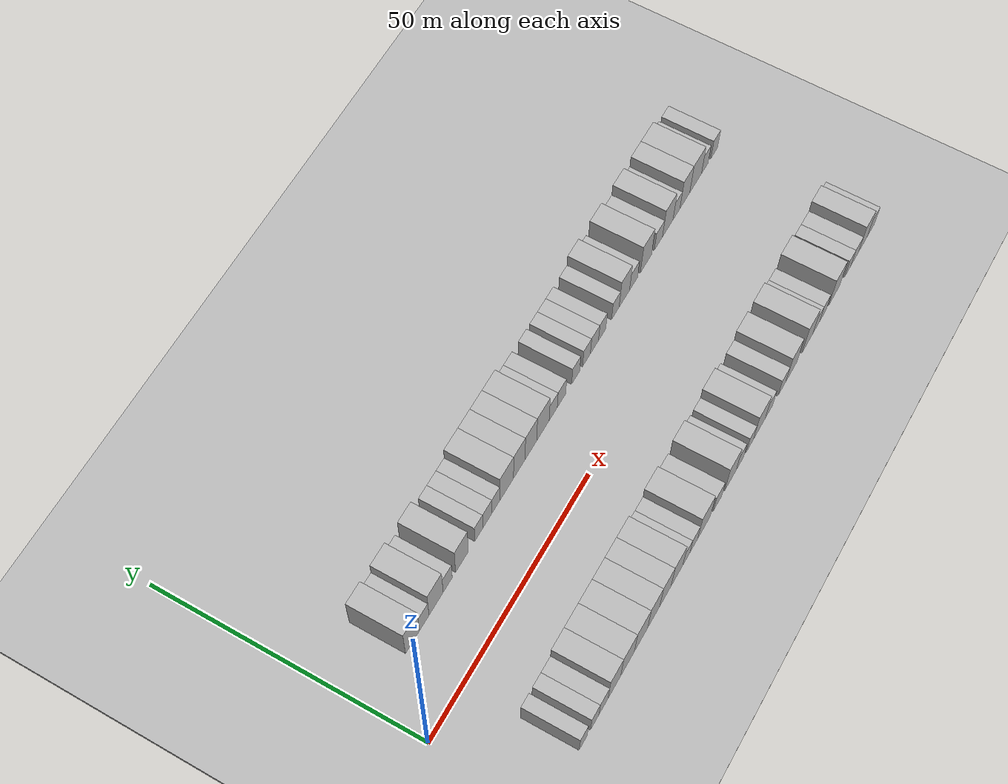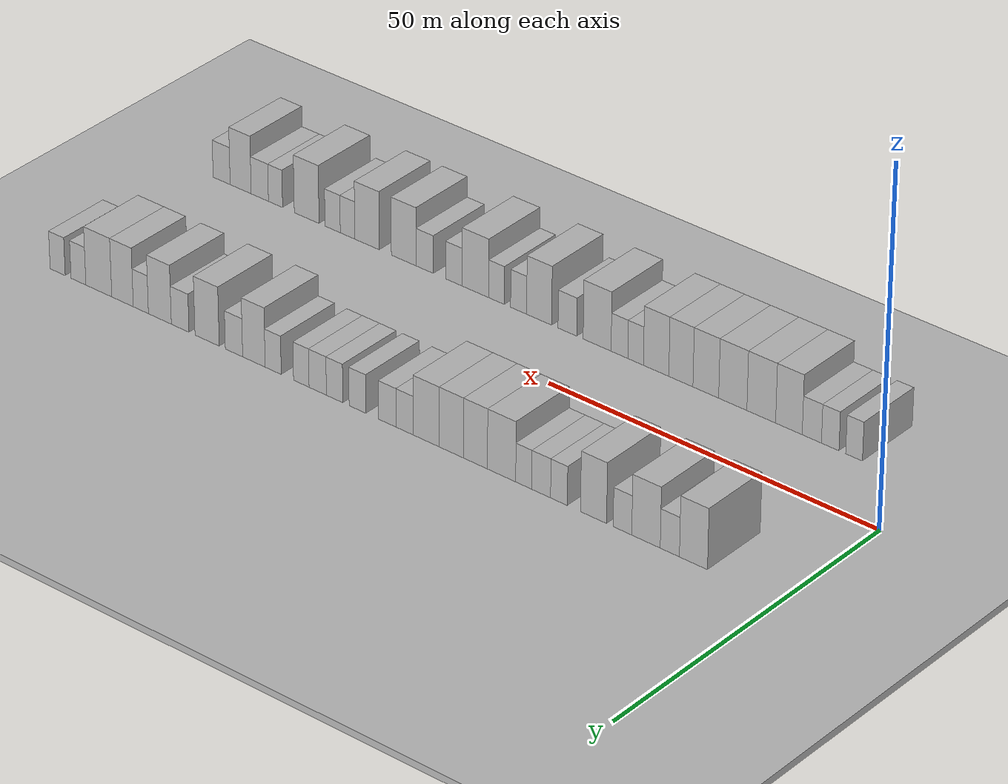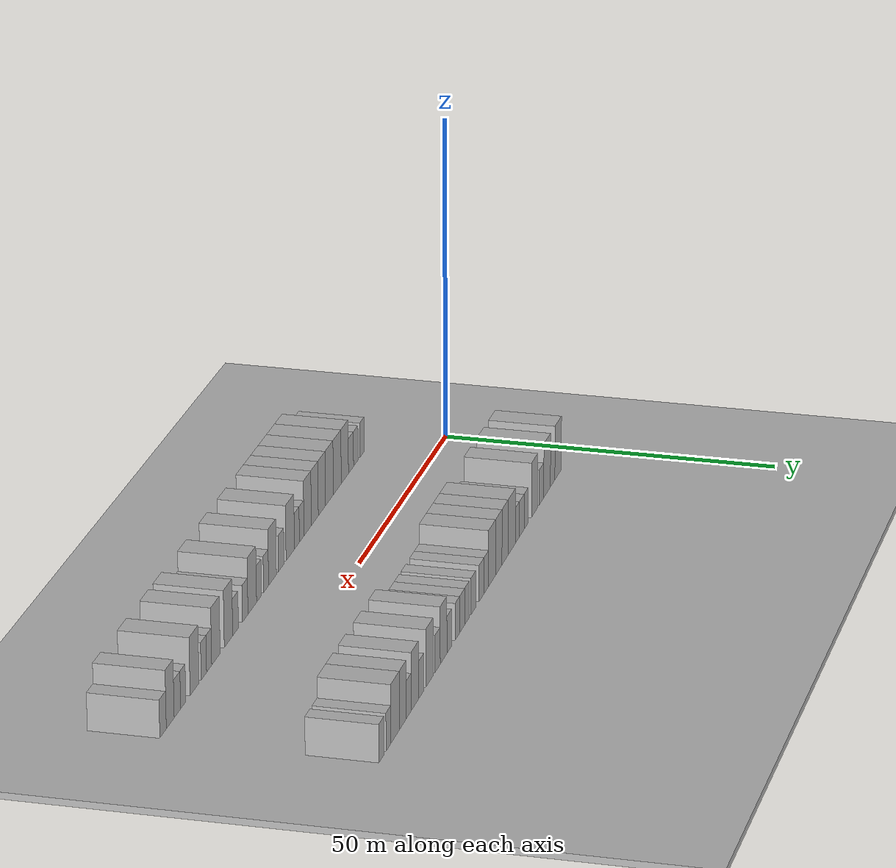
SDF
<sdf version="1.6">
 <world name="default">
  <include><name>ground_plane_1</name><uri>model://HANNAS_ground_plane</uri></include>
  <include>
   <name>ground_plane_2</name>
   <uri>model://HANNAS_ground_plane</uri>
   <pose>100 0 0  0 0 0</pose>
  </include>
  <model name="building_1">
   <static>1</static>
   <pose>12.0689 15.0000 0 0.000000 0.000000 1.570796</pose>
   <link name="link">
    <pose>0 0 4.50 0 0 0</pose>
    <collision name="collision"><geometry><box><size>10.0000 4.1378 9.0000</size></box></geometry></collision>
    <visual name="visual">
     <cast_shadows>0</cast_shadows>
     <geometry><box><size>10.0000 4.1378 9.0000</size></box></geometry>
     <material>
      <script>
       <uri>model://HANNAS_wall/materials/scripts</uri>
       <uri>model://HANNAS_wall/materials/textures</uri>
       <name>vrc/HANNAS_wall</name>
      </script>
     </material>
    </visual>
   </link>
  </model>
  <model name="building_2">
   <static>1</static>
   <pose>15.5600 15.0000 0 0.000000 0.000000 1.570796</pose>
   <link name="link">
    <pose>0 0 3.00 0 0 0</pose>
    <collision name="collision"><geometry><box><size>10.0000 2.8444 6.0000</size></box></geometry></collision>
    <visual name="visual">
     <cast_shadows>0</cast_shadows>
     <geometry><box><size>10.0000 2.8444 6.0000</size></box></geometry>
     <material>
      <script>
       <uri>model://HANNAS_wall/materials/scripts</uri>
       <uri>model://HANNAS_wall/materials/textures</uri>
       <name>vrc/HANNAS_wall</name>
      </script>
     </material>
    </visual>
   </link>
  </model>
  <model name="building_3">
   <static>1</static>
   <pose>19.1028 15.0000 0 0.000000 0.000000 1.570796</pose>
   <link name="link">
    <pose>0 0 4.50 0 0 0</pose>
    <collision name="collision"><geometry><box><size>10.0000 4.2411 9.0000</size></box></geometry></collision>
    <visual name="visual">
     <cast_shadows>0</cast_shadows>
     <geometry><box><size>10.0000 4.2411 9.0000</size></box></geometry>
     <material>
      <script>
       <uri>model://HANNAS_wall/materials/scripts</uri>
       <uri>model://HANNAS_wall/materials/textures</uri>
       <name>vrc/HANNAS_wall</name>
      </script>
     </material>
    </visual>
   </link>
  </model>
  <model name="building_4">
   <static>1</static>
   <pose>22.6102 15.0000 0 0.000000 0.000000 1.570796</pose>
   <link name="link">
    <pose>0 0 3.00 0 0 0</pose>
    <collision name="collision"><geometry><box><size>10.0000 2.7738 6.0000</size></box></geometry></collision>
    <visual name="visual">
     <cast_shadows>0</cast_shadows>
     <geometry><box><size>10.0000 2.7738 6.0000</size></box></geometry>
     <material>
      <script>
       <uri>model://HANNAS_wall/materials/scripts</uri>
       <uri>model://HANNAS_wall/materials/textures</uri>
       <name>vrc/HANNAS_wall</name>
      </script>
     </material>
    </visual>
   </link>
  </model>
  <model name="building_5">
   <static>1</static>
   <pose>26.9591 15.0000 0 0.000000 0.000000 1.570796</pose>
   <link name="link">
    <pose>0 0 4.50 0 0 0</pose>
    <collision name="collision"><geometry><box><size>10.0000 3.9240 9.0000</size></box></geometry></collision>
    <visual name="visual">
     <cast_shadows>0</cast_shadows>
     <geometry><box><size>10.0000 3.9240 9.0000</size></box></geometry>
     <material>
      <script>
       <uri>model://HANNAS_wall/materials/scripts</uri>
       <uri>model://HANNAS_wall/materials/textures</uri>
       <name>vrc/HANNAS_wall</name>
      </script>
     </material>
    </visual>
   </link>
  </model>
  <model name="building_6">
   <static>1</static>
   <pose>32.1991 15.0000 0 0.000000 0.000000 1.570796</pose>
   <link name="link">
    <pose>0 0 3.00 0 0 0</pose>
    <collision name="collision"><geometry><box><size>10.0000 2.5560 6.0000</size></box></geometry></collision>
    <visual name="visual">
     <cast_shadows>0</cast_shadows>
     <geometry><box><size>10.0000 2.5560 6.0000</size></box></geometry>
     <material>
      <script>
       <uri>model://HANNAS_wall/materials/scripts</uri>
       <uri>model://HANNAS_wall/materials/textures</uri>
       <name>vrc/HANNAS_wall</name>
      </script>
     </material>
    </visual>
   </link>
  </model>
  <model name="building_7">
   <static>1</static>
   <pose>34.9066 15.0000 0 0.000000 0.000000 1.570796</pose>
   <link name="link">
    <pose>0 0 3.00 0 0 0</pose>
    <collision name="collision"><geometry><box><size>10.0000 2.8590 6.0000</size></box></geometry></collision>
    <visual name="visual">
     <cast_shadows>0</cast_shadows>
     <geometry><box><size>10.0000 2.8590 6.0000</size></box></geometry>
     <material>
      <script>
       <uri>model://HANNAS_wall/materials/scripts</uri>
       <uri>model://HANNAS_wall/materials/textures</uri>
       <name>vrc/HANNAS_wall</name>
      </script>
     </material>
    </visual>
   </link>
  </model>
  <model name="building_8">
   <static>1</static>
   <pose>37.5727 15.0000 0 0.000000 0.000000 1.570796</pose>
   <link name="link">
    <pose>0 0 3.00 0 0 0</pose>
    <collision name="collision"><geometry><box><size>10.0000 2.4732 6.0000</size></box></geometry></collision>
    <visual name="visual">
     <cast_shadows>0</cast_shadows>
     <geometry><box><size>10.0000 2.4732 6.0000</size></box></geometry>
     <material>
      <script>
       <uri>model://HANNAS_wall/materials/scripts</uri>
       <uri>model://HANNAS_wall/materials/textures</uri>
       <name>vrc/HANNAS_wall</name>
      </script>
     </material>
    </visual>
   </link>
  </model>
  <model name="building_9">
   <static>1</static>
   <pose>40.9801 15.0000 0 0.000000 0.000000 1.570796</pose>
   <link name="link">
    <pose>0 0 4.50 0 0 0</pose>
    <collision name="collision"><geometry><box><size>10.0000 4.3416 9.0000</size></box></geometry></collision>
    <visual name="visual">
     <cast_shadows>0</cast_shadows>
     <geometry><box><size>10.0000 4.3416 9.0000</size></box></geometry>
     <material>
      <script>
       <uri>model://HANNAS_wall/materials/scripts</uri>
       <uri>model://HANNAS_wall/materials/textures</uri>
       <name>vrc/HANNAS_wall</name>
      </script>
     </material>
    </visual>
   </link>
  </model>
  <model name="building_10">
   <static>1</static>
   <pose>45.0064 15.0000 0 0.000000 0.000000 1.570796</pose>
   <link name="link">
    <pose>0 0 4.50 0 0 0</pose>
    <collision name="collision"><geometry><box><size>10.0000 3.7110 9.0000</size></box></geometry></collision>
    <visual name="visual">
     <cast_shadows>0</cast_shadows>
     <geometry><box><size>10.0000 3.7110 9.0000</size></box></geometry>
     <material>
      <script>
       <uri>model://HANNAS_wall/materials/scripts</uri>
       <uri>model://HANNAS_wall/materials/textures</uri>
       <name>vrc/HANNAS_wall</name>
      </script>
     </material>
    </visual>
   </link>
  </model>
  <model name="building_11">
   <static>1</static>
   <pose>48.7529 15.0000 0 0.000000 0.000000 1.570796</pose>
   <link name="link">
    <pose>0 0 4.50 0 0 0</pose>
    <collision name="collision"><geometry><box><size>10.0000 3.7821 9.0000</size></box></geometry></collision>
    <visual name="visual">
     <cast_shadows>0</cast_shadows>
     <geometry><box><size>10.0000 3.7821 9.0000</size></box></geometry>
     <material>
      <script>
       <uri>model://HANNAS_wall/materials/scripts</uri>
       <uri>model://HANNAS_wall/materials/textures</uri>
       <name>vrc/HANNAS_wall</name>
      </script>
     </material>
    </visual>
   </link>
  </model>
  <model name="building_12">
   <static>1</static>
   <pose>52.6965 15.0000 0 0.000000 0.000000 1.570796</pose>
   <link name="link">
    <pose>0 0 4.50 0 0 0</pose>
    <collision name="collision"><geometry><box><size>10.0000 4.1051 9.0000</size></box></geometry></collision>
    <visual name="visual">
     <cast_shadows>0</cast_shadows>
     <geometry><box><size>10.0000 4.1051 9.0000</size></box></geometry>
     <material>
      <script>
       <uri>model://HANNAS_wall/materials/scripts</uri>
       <uri>model://HANNAS_wall/materials/textures</uri>
       <name>vrc/HANNAS_wall</name>
      </script>
     </material>
    </visual>
   </link>
  </model>
  <model name="building_13">
   <static>1</static>
   <pose>56.1009 15.0000 0 0.000000 0.000000 1.570796</pose>
   <link name="link">
    <pose>0 0 3.00 0 0 0</pose>
    <collision name="collision"><geometry><box><size>10.0000 2.7037 6.0000</size></box></geometry></collision>
    <visual name="visual">
     <cast_shadows>0</cast_shadows>
     <geometry><box><size>10.0000 2.7037 6.0000</size></box></geometry>
     <material>
      <script>
       <uri>model://HANNAS_wall/materials/scripts</uri>
       <uri>model://HANNAS_wall/materials/textures</uri>
       <name>vrc/HANNAS_wall</name>
      </script>
     </material>
    </visual>
   </link>
  </model>
  <model name="building_14">
   <static>1</static>
   <pose>58.8511 15.0000 0 0.000000 0.000000 1.570796</pose>
   <link name="link">
    <pose>0 0 3.00 0 0 0</pose>
    <collision name="collision"><geometry><box><size>10.0000 2.7967 6.0000</size></box></geometry></collision>
    <visual name="visual">
     <cast_shadows>0</cast_shadows>
     <geometry><box><size>10.0000 2.7967 6.0000</size></box></geometry>
     <material>
      <script>
       <uri>model://HANNAS_wall/materials/scripts</uri>
       <uri>model://HANNAS_wall/materials/textures</uri>
       <name>vrc/HANNAS_wall</name>
      </script>
     </material>
    </visual>
   </link>
  </model>
  <model name="building_15">
   <static>1</static>
   <pose>63.5975 15.0000 0 0.000000 0.000000 1.570796</pose>
   <link name="link">
    <pose>0 0 3.00 0 0 0</pose>
    <collision name="collision"><geometry><box><size>10.0000 2.6962 6.0000</size></box></geometry></collision>
    <visual name="visual">
     <cast_shadows>0</cast_shadows>
     <geometry><box><size>10.0000 2.6962 6.0000</size></box></geometry>
     <material>
      <script>
       <uri>model://HANNAS_wall/materials/scripts</uri>
       <uri>model://HANNAS_wall/materials/textures</uri>
       <name>vrc/HANNAS_wall</name>
      </script>
     </material>
    </visual>
   </link>
  </model>
  <model name="building_16">
   <static>1</static>
   <pose>67.2687 15.0000 0 0.000000 0.000000 1.570796</pose>
   <link name="link">
    <pose>0 0 3.00 0 0 0</pose>
    <collision name="collision"><geometry><box><size>10.0000 2.6462 6.0000</size></box></geometry></collision>
    <visual name="visual">
     <cast_shadows>0</cast_shadows>
     <geometry><box><size>10.0000 2.6462 6.0000</size></box></geometry>
     <material>
      <script>
       <uri>model://HANNAS_wall/materials/scripts</uri>
       <uri>model://HANNAS_wall/materials/textures</uri>
       <name>vrc/HANNAS_wall</name>
      </script>
     </material>
    </visual>
   </link>
  </model>
  <model name="building_17">
   <static>1</static>
   <pose>69.9906 15.0000 0 0.000000 0.000000 1.570796</pose>
   <link name="link">
    <pose>0 0 3.00 0 0 0</pose>
    <collision name="collision"><geometry><box><size>10.0000 2.7976 6.0000</size></box></geometry></collision>
    <visual name="visual">
     <cast_shadows>0</cast_shadows>
     <geometry><box><size>10.0000 2.7976 6.0000</size></box></geometry>
     <material>
      <script>
       <uri>model://HANNAS_wall/materials/scripts</uri>
       <uri>model://HANNAS_wall/materials/textures</uri>
       <name>vrc/HANNAS_wall</name>
      </script>
     </material>
    </visual>
   </link>
  </model>
  <model name="building_18">
   <static>1</static>
   <pose>72.6465 15.0000 0 0.000000 0.000000 1.570796</pose>
   <link name="link">
    <pose>0 0 3.00 0 0 0</pose>
    <collision name="collision"><geometry><box><size>10.0000 2.5141 6.0000</size></box></geometry></collision>
    <visual name="visual">
     <cast_shadows>0</cast_shadows>
     <geometry><box><size>10.0000 2.5141 6.0000</size></box></geometry>
     <material>
      <script>
       <uri>model://HANNAS_wall/materials/scripts</uri>
       <uri>model://HANNAS_wall/materials/textures</uri>
       <name>vrc/HANNAS_wall</name>
      </script>
     </material>
    </visual>
   </link>
  </model>
  <model name="building_19">
   <static>1</static>
   <pose>77.2143 15.0000 0 0.000000 0.000000 1.570796</pose>
   <link name="link">
    <pose>0 0 3.00 0 0 0</pose>
    <collision name="collision"><geometry><box><size>10.0000 2.6215 6.0000</size></box></geometry></collision>
    <visual name="visual">
     <cast_shadows>0</cast_shadows>
     <geometry><box><size>10.0000 2.6215 6.0000</size></box></geometry>
     <material>
      <script>
       <uri>model://HANNAS_wall/materials/scripts</uri>
       <uri>model://HANNAS_wall/materials/textures</uri>
       <name>vrc/HANNAS_wall</name>
      </script>
     </material>
    </visual>
   </link>
  </model>
  <model name="building_20">
   <static>1</static>
   <pose>80.3716 15.0000 0 0.000000 0.000000 1.570796</pose>
   <link name="link">
    <pose>0 0 4.50 0 0 0</pose>
    <collision name="collision"><geometry><box><size>10.0000 3.6931 9.0000</size></box></geometry></collision>
    <visual name="visual">
     <cast_shadows>0</cast_shadows>
     <geometry><box><size>10.0000 3.6931 9.0000</size></box></geometry>
     <material>
      <script>
       <uri>model://HANNAS_wall/materials/scripts</uri>
       <uri>model://HANNAS_wall/materials/textures</uri>
       <name>vrc/HANNAS_wall</name>
      </script>
     </material>
    </visual>
   </link>
  </model>
  <model name="building_21">
   <static>1</static>
   <pose>83.6435 15.0000 0 0.000000 0.000000 1.570796</pose>
   <link name="link">
    <pose>0 0 3.00 0 0 0</pose>
    <collision name="collision"><geometry><box><size>10.0000 2.8508 6.0000</size></box></geometry></collision>
    <visual name="visual">
     <cast_shadows>0</cast_shadows>
     <geometry><box><size>10.0000 2.8508 6.0000</size></box></geometry>
     <material>
      <script>
       <uri>model://HANNAS_wall/materials/scripts</uri>
       <uri>model://HANNAS_wall/materials/textures</uri>
       <name>vrc/HANNAS_wall</name>
      </script>
     </material>
    </visual>
   </link>
  </model>
  <model name="building_22">
   <static>1</static>
   <pose>88.0802 15.0000 0 0.000000 0.000000 1.570796</pose>
   <link name="link">
    <pose>0 0 4.50 0 0 0</pose>
    <collision name="collision"><geometry><box><size>10.0000 4.0225 9.0000</size></box></geometry></collision>
    <visual name="visual">
     <cast_shadows>0</cast_shadows>
     <geometry><box><size>10.0000 4.0225 9.0000</size></box></geometry>
     <material>
      <script>
       <uri>model://HANNAS_wall/materials/scripts</uri>
       <uri>model://HANNAS_wall/materials/textures</uri>
       <name>vrc/HANNAS_wall</name>
      </script>
     </material>
    </visual>
   </link>
  </model>
  <model name="building_23">
   <static>1</static>
   <pose>92.5674 15.0000 0 0.000000 0.000000 1.570796</pose>
   <link name="link">
    <pose>0 0 3.00 0 0 0</pose>
    <collision name="collision"><geometry><box><size>10.0000 2.9518 6.0000</size></box></geometry></collision>
    <visual name="visual">
     <cast_shadows>0</cast_shadows>
     <geometry><box><size>10.0000 2.9518 6.0000</size></box></geometry>
     <material>
      <script>
       <uri>model://HANNAS_wall/materials/scripts</uri>
       <uri>model://HANNAS_wall/materials/textures</uri>
       <name>vrc/HANNAS_wall</name>
      </script>
     </material>
    </visual>
   </link>
  </model>
  <model name="building_24">
   <static>1</static>
   <pose>95.9662 15.0000 0 0.000000 0.000000 1.570796</pose>
   <link name="link">
    <pose>0 0 4.50 0 0 0</pose>
    <collision name="collision"><geometry><box><size>10.0000 3.8458 9.0000</size></box></geometry></collision>
    <visual name="visual">
     <cast_shadows>0</cast_shadows>
     <geometry><box><size>10.0000 3.8458 9.0000</size></box></geometry>
     <material>
      <script>
       <uri>model://HANNAS_wall/materials/scripts</uri>
       <uri>model://HANNAS_wall/materials/textures</uri>
       <name>vrc/HANNAS_wall</name>
      </script>
     </material>
    </visual>
   </link>
  </model>
  <model name="building_25">
   <static>1</static>
   <pose>99.1635 15.0000 0 0.000000 0.000000 1.570796</pose>
   <link name="link">
    <pose>0 0 3.00 0 0 0</pose>
    <collision name="collision"><geometry><box><size>10.0000 2.5488 6.0000</size></box></geometry></collision>
    <visual name="visual">
     <cast_shadows>0</cast_shadows>
     <geometry><box><size>10.0000 2.5488 6.0000</size></box></geometry>
     <material>
      <script>
       <uri>model://HANNAS_wall/materials/scripts</uri>
       <uri>model://HANNAS_wall/materials/textures</uri>
       <name>vrc/HANNAS_wall</name>
      </script>
     </material>
    </visual>
   </link>
  </model>
  <model name="building_26">
   <static>1</static>
   <pose>102.2581 15.0000 0 0.000000 0.000000 1.570796</pose>
   <link name="link">
    <pose>0 0 4.50 0 0 0</pose>
    <collision name="collision"><geometry><box><size>10.0000 3.6404 9.0000</size></box></geometry></collision>
    <visual name="visual">
     <cast_shadows>0</cast_shadows>
     <geometry><box><size>10.0000 3.6404 9.0000</size></box></geometry>
     <material>
      <script>
       <uri>model://HANNAS_wall/materials/scripts</uri>
       <uri>model://HANNAS_wall/materials/textures</uri>
       <name>vrc/HANNAS_wall</name>
      </script>
     </material>
    </visual>
   </link>
  </model>
  <model name="building_27">
   <static>1</static>
   <pose>106.2851 15.0000 0 0.000000 0.000000 1.570796</pose>
   <link name="link">
    <pose>0 0 4.50 0 0 0</pose>
    <collision name="collision"><geometry><box><size>10.0000 4.4137 9.0000</size></box></geometry></collision>
    <visual name="visual">
     <cast_shadows>0</cast_shadows>
     <geometry><box><size>10.0000 4.4137 9.0000</size></box></geometry>
     <material>
      <script>
       <uri>model://HANNAS_wall/materials/scripts</uri>
       <uri>model://HANNAS_wall/materials/textures</uri>
       <name>vrc/HANNAS_wall</name>
      </script>
     </material>
    </visual>
   </link>
  </model>
  <model name="building_28">
   <static>1</static>
   <pose>109.7603 15.0000 0 0.000000 0.000000 1.570796</pose>
   <link name="link">
    <pose>0 0 3.00 0 0 0</pose>
    <collision name="collision"><geometry><box><size>10.0000 2.5368 6.0000</size></box></geometry></collision>
    <visual name="visual">
     <cast_shadows>0</cast_shadows>
     <geometry><box><size>10.0000 2.5368 6.0000</size></box></geometry>
     <material>
      <script>
       <uri>model://HANNAS_wall/materials/scripts</uri>
       <uri>model://HANNAS_wall/materials/textures</uri>
       <name>vrc/HANNAS_wall</name>
      </script>
     </material>
    </visual>
   </link>
  </model>
  <model name="building_29">
   <static>1</static>
   <pose>113.3267 15.0000 0 0.000000 0.000000 1.570796</pose>
   <link name="link">
    <pose>0 0 3.00 0 0 0</pose>
    <collision name="collision"><geometry><box><size>10.0000 2.5958 6.0000</size></box></geometry></collision>
    <visual name="visual">
     <cast_shadows>0</cast_shadows>
     <geometry><box><size>10.0000 2.5958 6.0000</size></box></geometry>
     <material>
      <script>
       <uri>model://HANNAS_wall/materials/scripts</uri>
       <uri>model://HANNAS_wall/materials/textures</uri>
       <name>vrc/HANNAS_wall</name>
      </script>
     </material>
    </visual>
   </link>
  </model>
  <model name="building_58">
   <static>1</static>
   <pose>11.2456 -15.0000 0 0.000000 0.000000 1.570796</pose>
   <link name="link">
    <pose>0 0 3.00 0 0 0</pose>
    <collision name="collision"><geometry><box><size>10.0000 2.4913 6.0000</size></box></geometry></collision>
    <visual name="visual">
     <cast_shadows>0</cast_shadows>
     <geometry><box><size>10.0000 2.4913 6.0000</size></box></geometry>
     <material>
      <script>
       <uri>model://HANNAS_wall/materials/scripts</uri>
       <uri>model://HANNAS_wall/materials/textures</uri>
       <name>vrc/HANNAS_wall</name>
      </script>
     </material>
    </visual>
   </link>
  </model>
  <model name="building_59">
   <static>1</static>
   <pose>14.8030 -15.0000 0 0.000000 0.000000 1.570796</pose>
   <link name="link">
    <pose>0 0 3.00 0 0 0</pose>
    <collision name="collision"><geometry><box><size>10.0000 2.6236 6.0000</size></box></geometry></collision>
    <visual name="visual">
     <cast_shadows>0</cast_shadows>
     <geometry><box><size>10.0000 2.6236 6.0000</size></box></geometry>
     <material>
      <script>
       <uri>model://HANNAS_wall/materials/scripts</uri>
       <uri>model://HANNAS_wall/materials/textures</uri>
       <name>vrc/HANNAS_wall</name>
      </script>
     </material>
    </visual>
   </link>
  </model>
  <model name="building_60">
   <static>1</static>
   <pose>17.5564 -15.0000 0 0.000000 0.000000 1.570796</pose>
   <link name="link">
    <pose>0 0 3.00 0 0 0</pose>
    <collision name="collision"><geometry><box><size>10.0000 2.8832 6.0000</size></box></geometry></collision>
    <visual name="visual">
     <cast_shadows>0</cast_shadows>
     <geometry><box><size>10.0000 2.8832 6.0000</size></box></geometry>
     <material>
      <script>
       <uri>model://HANNAS_wall/materials/scripts</uri>
       <uri>model://HANNAS_wall/materials/textures</uri>
       <name>vrc/HANNAS_wall</name>
      </script>
     </material>
    </visual>
   </link>
  </model>
  <model name="building_61">
   <static>1</static>
   <pose>21.0072 -15.0000 0 0.000000 0.000000 1.570796</pose>
   <link name="link">
    <pose>0 0 4.50 0 0 0</pose>
    <collision name="collision"><geometry><box><size>10.0000 4.0182 9.0000</size></box></geometry></collision>
    <visual name="visual">
     <cast_shadows>0</cast_shadows>
     <geometry><box><size>10.0000 4.0182 9.0000</size></box></geometry>
     <material>
      <script>
       <uri>model://HANNAS_wall/materials/scripts</uri>
       <uri>model://HANNAS_wall/materials/textures</uri>
       <name>vrc/HANNAS_wall</name>
      </script>
     </material>
    </visual>
   </link>
  </model>
  <model name="building_62">
   <static>1</static>
   <pose>25.1974 -15.0000 0 0.000000 0.000000 1.570796</pose>
   <link name="link">
    <pose>0 0 4.50 0 0 0</pose>
    <collision name="collision"><geometry><box><size>10.0000 4.3623 9.0000</size></box></geometry></collision>
    <visual name="visual">
     <cast_shadows>0</cast_shadows>
     <geometry><box><size>10.0000 4.3623 9.0000</size></box></geometry>
     <material>
      <script>
       <uri>model://HANNAS_wall/materials/scripts</uri>
       <uri>model://HANNAS_wall/materials/textures</uri>
       <name>vrc/HANNAS_wall</name>
      </script>
     </material>
    </visual>
   </link>
  </model>
  <model name="building_63">
   <static>1</static>
   <pose>29.5374 -15.0000 0 0.000000 0.000000 1.570796</pose>
   <link name="link">
    <pose>0 0 4.50 0 0 0</pose>
    <collision name="collision"><geometry><box><size>10.0000 4.3177 9.0000</size></box></geometry></collision>
    <visual name="visual">
     <cast_shadows>0</cast_shadows>
     <geometry><box><size>10.0000 4.3177 9.0000</size></box></geometry>
     <material>
      <script>
       <uri>model://HANNAS_wall/materials/scripts</uri>
       <uri>model://HANNAS_wall/materials/textures</uri>
       <name>vrc/HANNAS_wall</name>
      </script>
     </material>
    </visual>
   </link>
  </model>
  <model name="building_64">
   <static>1</static>
   <pose>33.6752 -15.0000 0 0.000000 0.000000 1.570796</pose>
   <link name="link">
    <pose>0 0 4.50 0 0 0</pose>
    <collision name="collision"><geometry><box><size>10.0000 3.9579 9.0000</size></box></geometry></collision>
    <visual name="visual">
     <cast_shadows>0</cast_shadows>
     <geometry><box><size>10.0000 3.9579 9.0000</size></box></geometry>
     <material>
      <script>
       <uri>model://HANNAS_wall/materials/scripts</uri>
       <uri>model://HANNAS_wall/materials/textures</uri>
       <name>vrc/HANNAS_wall</name>
      </script>
     </material>
    </visual>
   </link>
  </model>
  <model name="building_65">
   <static>1</static>
   <pose>37.5245 -15.0000 0 0.000000 0.000000 1.570796</pose>
   <link name="link">
    <pose>0 0 4.50 0 0 0</pose>
    <collision name="collision"><geometry><box><size>10.0000 3.7407 9.0000</size></box></geometry></collision>
    <visual name="visual">
     <cast_shadows>0</cast_shadows>
     <geometry><box><size>10.0000 3.7407 9.0000</size></box></geometry>
     <material>
      <script>
       <uri>model://HANNAS_wall/materials/scripts</uri>
       <uri>model://HANNAS_wall/materials/textures</uri>
       <name>vrc/HANNAS_wall</name>
      </script>
     </material>
    </visual>
   </link>
  </model>
  <model name="building_66">
   <static>1</static>
   <pose>41.3715 -15.0000 0 0.000000 0.000000 1.570796</pose>
   <link name="link">
    <pose>0 0 4.50 0 0 0</pose>
    <collision name="collision"><geometry><box><size>10.0000 3.9533 9.0000</size></box></geometry></collision>
    <visual name="visual">
     <cast_shadows>0</cast_shadows>
     <geometry><box><size>10.0000 3.9533 9.0000</size></box></geometry>
     <material>
      <script>
       <uri>model://HANNAS_wall/materials/scripts</uri>
       <uri>model://HANNAS_wall/materials/textures</uri>
       <name>vrc/HANNAS_wall</name>
      </script>
     </material>
    </visual>
   </link>
  </model>
  <model name="building_67">
   <static>1</static>
   <pose>44.5639 -15.0000 0 0.000000 0.000000 1.570796</pose>
   <link name="link">
    <pose>0 0 3.00 0 0 0</pose>
    <collision name="collision"><geometry><box><size>10.0000 2.4314 6.0000</size></box></geometry></collision>
    <visual name="visual">
     <cast_shadows>0</cast_shadows>
     <geometry><box><size>10.0000 2.4314 6.0000</size></box></geometry>
     <material>
      <script>
       <uri>model://HANNAS_wall/materials/scripts</uri>
       <uri>model://HANNAS_wall/materials/textures</uri>
       <name>vrc/HANNAS_wall</name>
      </script>
     </material>
    </visual>
   </link>
  </model>
  <model name="building_68">
   <static>1</static>
   <pose>47.0940 -15.0000 0 0.000000 0.000000 1.570796</pose>
   <link name="link">
    <pose>0 0 3.00 0 0 0</pose>
    <collision name="collision"><geometry><box><size>10.0000 2.6288 6.0000</size></box></geometry></collision>
    <visual name="visual">
     <cast_shadows>0</cast_shadows>
     <geometry><box><size>10.0000 2.6288 6.0000</size></box></geometry>
     <material>
      <script>
       <uri>model://HANNAS_wall/materials/scripts</uri>
       <uri>model://HANNAS_wall/materials/textures</uri>
       <name>vrc/HANNAS_wall</name>
      </script>
     </material>
    </visual>
   </link>
  </model>
  <model name="building_69">
   <static>1</static>
   <pose>50.6134 -15.0000 0 0.000000 0.000000 1.570796</pose>
   <link name="link">
    <pose>0 0 4.50 0 0 0</pose>
    <collision name="collision"><geometry><box><size>10.0000 4.4100 9.0000</size></box></geometry></collision>
    <visual name="visual">
     <cast_shadows>0</cast_shadows>
     <geometry><box><size>10.0000 4.4100 9.0000</size></box></geometry>
     <material>
      <script>
       <uri>model://HANNAS_wall/materials/scripts</uri>
       <uri>model://HANNAS_wall/materials/textures</uri>
       <name>vrc/HANNAS_wall</name>
      </script>
     </material>
    </visual>
   </link>
  </model>
  <model name="building_70">
   <static>1</static>
   <pose>55.3150 -15.0000 0 0.000000 0.000000 1.570796</pose>
   <link name="link">
    <pose>0 0 3.00 0 0 0</pose>
    <collision name="collision"><geometry><box><size>10.0000 2.9932 6.0000</size></box></geometry></collision>
    <visual name="visual">
     <cast_shadows>0</cast_shadows>
     <geometry><box><size>10.0000 2.9932 6.0000</size></box></geometry>
     <material>
      <script>
       <uri>model://HANNAS_wall/materials/scripts</uri>
       <uri>model://HANNAS_wall/materials/textures</uri>
       <name>vrc/HANNAS_wall</name>
      </script>
     </material>
    </visual>
   </link>
  </model>
  <model name="building_71">
   <static>1</static>
   <pose>59.8158 -15.0000 0 0.000000 0.000000 1.570796</pose>
   <link name="link">
    <pose>0 0 4.50 0 0 0</pose>
    <collision name="collision"><geometry><box><size>10.0000 4.0084 9.0000</size></box></geometry></collision>
    <visual name="visual">
     <cast_shadows>0</cast_shadows>
     <geometry><box><size>10.0000 4.0084 9.0000</size></box></geometry>
     <material>
      <script>
       <uri>model://HANNAS_wall/materials/scripts</uri>
       <uri>model://HANNAS_wall/materials/textures</uri>
       <name>vrc/HANNAS_wall</name>
      </script>
     </material>
    </visual>
   </link>
  </model>
  <model name="building_72">
   <static>1</static>
   <pose>63.1163 -15.0000 0 0.000000 0.000000 1.570796</pose>
   <link name="link">
    <pose>0 0 3.00 0 0 0</pose>
    <collision name="collision"><geometry><box><size>10.0000 2.5925 6.0000</size></box></geometry></collision>
    <visual name="visual">
     <cast_shadows>0</cast_shadows>
     <geometry><box><size>10.0000 2.5925 6.0000</size></box></geometry>
     <material>
      <script>
       <uri>model://HANNAS_wall/materials/scripts</uri>
       <uri>model://HANNAS_wall/materials/textures</uri>
       <name>vrc/HANNAS_wall</name>
      </script>
     </material>
    </visual>
   </link>
  </model>
  <model name="building_73">
   <static>1</static>
   <pose>66.6701 -15.0000 0 0.000000 0.000000 1.570796</pose>
   <link name="link">
    <pose>0 0 3.00 0 0 0</pose>
    <collision name="collision"><geometry><box><size>10.0000 2.5153 6.0000</size></box></geometry></collision>
    <visual name="visual">
     <cast_shadows>0</cast_shadows>
     <geometry><box><size>10.0000 2.5153 6.0000</size></box></geometry>
     <material>
      <script>
       <uri>model://HANNAS_wall/materials/scripts</uri>
       <uri>model://HANNAS_wall/materials/textures</uri>
       <name>vrc/HANNAS_wall</name>
      </script>
     </material>
    </visual>
   </link>
  </model>
  <model name="building_74">
   <static>1</static>
   <pose>70.0931 -15.0000 0 0.000000 0.000000 1.570796</pose>
   <link name="link">
    <pose>0 0 4.50 0 0 0</pose>
    <collision name="collision"><geometry><box><size>10.0000 4.3306 9.0000</size></box></geometry></collision>
    <visual name="visual">
     <cast_shadows>0</cast_shadows>
     <geometry><box><size>10.0000 4.3306 9.0000</size></box></geometry>
     <material>
      <script>
       <uri>model://HANNAS_wall/materials/scripts</uri>
       <uri>model://HANNAS_wall/materials/textures</uri>
       <name>vrc/HANNAS_wall</name>
      </script>
     </material>
    </visual>
   </link>
  </model>
  <model name="building_75">
   <static>1</static>
   <pose>73.6156 -15.0000 0 0.000000 0.000000 1.570796</pose>
   <link name="link">
    <pose>0 0 3.00 0 0 0</pose>
    <collision name="collision"><geometry><box><size>10.0000 2.7145 6.0000</size></box></geometry></collision>
    <visual name="visual">
     <cast_shadows>0</cast_shadows>
     <geometry><box><size>10.0000 2.7145 6.0000</size></box></geometry>
     <material>
      <script>
       <uri>model://HANNAS_wall/materials/scripts</uri>
       <uri>model://HANNAS_wall/materials/textures</uri>
       <name>vrc/HANNAS_wall</name>
      </script>
     </material>
    </visual>
   </link>
  </model>
  <model name="building_76">
   <static>1</static>
   <pose>78.3901 -15.0000 0 0.000000 0.000000 1.570796</pose>
   <link name="link">
    <pose>0 0 3.00 0 0 0</pose>
    <collision name="collision"><geometry><box><size>10.0000 2.8345 6.0000</size></box></geometry></collision>
    <visual name="visual">
     <cast_shadows>0</cast_shadows>
     <geometry><box><size>10.0000 2.8345 6.0000</size></box></geometry>
     <material>
      <script>
       <uri>model://HANNAS_wall/materials/scripts</uri>
       <uri>model://HANNAS_wall/materials/textures</uri>
       <name>vrc/HANNAS_wall</name>
      </script>
     </material>
    </visual>
   </link>
  </model>
  <model name="building_77">
   <static>1</static>
   <pose>81.8644 -15.0000 0 0.000000 0.000000 1.570796</pose>
   <link name="link">
    <pose>0 0 4.50 0 0 0</pose>
    <collision name="collision"><geometry><box><size>10.0000 4.1142 9.0000</size></box></geometry></collision>
    <visual name="visual">
     <cast_shadows>0</cast_shadows>
     <geometry><box><size>10.0000 4.1142 9.0000</size></box></geometry>
     <material>
      <script>
       <uri>model://HANNAS_wall/materials/scripts</uri>
       <uri>model://HANNAS_wall/materials/textures</uri>
       <name>vrc/HANNAS_wall</name>
      </script>
     </material>
    </visual>
   </link>
  </model>
  <model name="building_78">
   <static>1</static>
   <pose>87.9606 -15.0000 0 0.000000 0.000000 1.570796</pose>
   <link name="link">
    <pose>0 0 4.50 0 0 0</pose>
    <collision name="collision"><geometry><box><size>10.0000 4.0783 9.0000</size></box></geometry></collision>
    <visual name="visual">
     <cast_shadows>0</cast_shadows>
     <geometry><box><size>10.0000 4.0783 9.0000</size></box></geometry>
     <material>
      <script>
       <uri>model://HANNAS_wall/materials/scripts</uri>
       <uri>model://HANNAS_wall/materials/textures</uri>
       <name>vrc/HANNAS_wall</name>
      </script>
     </material>
    </visual>
   </link>
  </model>
  <model name="building_79">
   <static>1</static>
   <pose>91.2246 -15.0000 0 0.000000 0.000000 1.570796</pose>
   <link name="link">
    <pose>0 0 3.00 0 0 0</pose>
    <collision name="collision"><geometry><box><size>10.0000 2.4495 6.0000</size></box></geometry></collision>
    <visual name="visual">
     <cast_shadows>0</cast_shadows>
     <geometry><box><size>10.0000 2.4495 6.0000</size></box></geometry>
     <material>
      <script>
       <uri>model://HANNAS_wall/materials/scripts</uri>
       <uri>model://HANNAS_wall/materials/textures</uri>
       <name>vrc/HANNAS_wall</name>
      </script>
     </material>
    </visual>
   </link>
  </model>
  <model name="building_80">
   <static>1</static>
   <pose>93.7338 -15.0000 0 0.000000 0.000000 1.570796</pose>
   <link name="link">
    <pose>0 0 3.00 0 0 0</pose>
    <collision name="collision"><geometry><box><size>10.0000 2.5689 6.0000</size></box></geometry></collision>
    <visual name="visual">
     <cast_shadows>0</cast_shadows>
     <geometry><box><size>10.0000 2.5689 6.0000</size></box></geometry>
     <material>
      <script>
       <uri>model://HANNAS_wall/materials/scripts</uri>
       <uri>model://HANNAS_wall/materials/textures</uri>
       <name>vrc/HANNAS_wall</name>
      </script>
     </material>
    </visual>
   </link>
  </model>
  <model name="building_81">
   <static>1</static>
   <pose>98.1179 -15.0000 0 0.000000 0.000000 1.570796</pose>
   <link name="link">
    <pose>0 0 4.50 0 0 0</pose>
    <collision name="collision"><geometry><box><size>10.0000 4.1994 9.0000</size></box></geometry></collision>
    <visual name="visual">
     <cast_shadows>0</cast_shadows>
     <geometry><box><size>10.0000 4.1994 9.0000</size></box></geometry>
     <material>
      <script>
       <uri>model://HANNAS_wall/materials/scripts</uri>
       <uri>model://HANNAS_wall/materials/textures</uri>
       <name>vrc/HANNAS_wall</name>
      </script>
     </material>
    </visual>
   </link>
  </model>
  <model name="building_82">
   <static>1</static>
   <pose>103.4249 -15.0000 0 0.000000 0.000000 1.570796</pose>
   <link name="link">
    <pose>0 0 3.00 0 0 0</pose>
    <collision name="collision"><geometry><box><size>10.0000 2.4146 6.0000</size></box></geometry></collision>
    <visual name="visual">
     <cast_shadows>0</cast_shadows>
     <geometry><box><size>10.0000 2.4146 6.0000</size></box></geometry>
     <material>
      <script>
       <uri>model://HANNAS_wall/materials/scripts</uri>
       <uri>model://HANNAS_wall/materials/textures</uri>
       <name>vrc/HANNAS_wall</name>
      </script>
     </material>
    </visual>
   </link>
  </model>
  <model name="building_83">
   <static>1</static>
   <pose>106.1105 -15.0000 0 0.000000 0.000000 1.570796</pose>
   <link name="link">
    <pose>0 0 3.00 0 0 0</pose>
    <collision name="collision"><geometry><box><size>10.0000 2.9567 6.0000</size></box></geometry></collision>
    <visual name="visual">
     <cast_shadows>0</cast_shadows>
     <geometry><box><size>10.0000 2.9567 6.0000</size></box></geometry>
     <material>
      <script>
       <uri>model://HANNAS_wall/materials/scripts</uri>
       <uri>model://HANNAS_wall/materials/textures</uri>
       <name>vrc/HANNAS_wall</name>
      </script>
     </material>
    </visual>
   </link>
  </model>
  <model name="building_84">
   <static>1</static>
   <pose>109.3991 -15.0000 0 0.000000 0.000000 1.570796</pose>
   <link name="link">
    <pose>0 0 4.50 0 0 0</pose>
    <collision name="collision"><geometry><box><size>10.0000 3.6205 9.0000</size></box></geometry></collision>
    <visual name="visual">
     <cast_shadows>0</cast_shadows>
     <geometry><box><size>10.0000 3.6205 9.0000</size></box></geometry>
     <material>
      <script>
       <uri>model://HANNAS_wall/materials/scripts</uri>
       <uri>model://HANNAS_wall/materials/textures</uri>
       <name>vrc/HANNAS_wall</name>
      </script>
     </material>
    </visual>
   </link>
  </model>
  <model name="building_85">
   <static>1</static>
   <pose>112.6812 -15.0000 0 0.000000 0.000000 1.570796</pose>
   <link name="link">
    <pose>0 0 3.00 0 0 0</pose>
    <collision name="collision"><geometry><box><size>10.0000 2.9437 6.0000</size></box></geometry></collision>
    <visual name="visual">
     <cast_shadows>0</cast_shadows>
     <geometry><box><size>10.0000 2.9437 6.0000</size></box></geometry>
     <material>
      <script>
       <uri>model://HANNAS_wall/materials/scripts</uri>
       <uri>model://HANNAS_wall/materials/textures</uri>
       <name>vrc/HANNAS_wall</name>
      </script>
     </material>
    </visual>
   </link>
  </model>
 </world>
</sdf>
